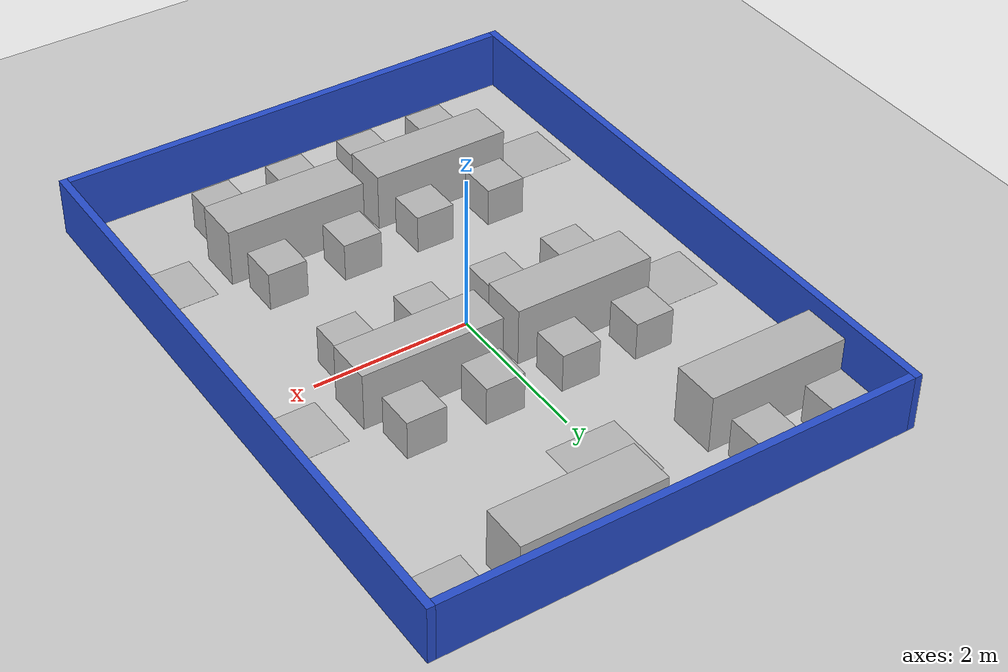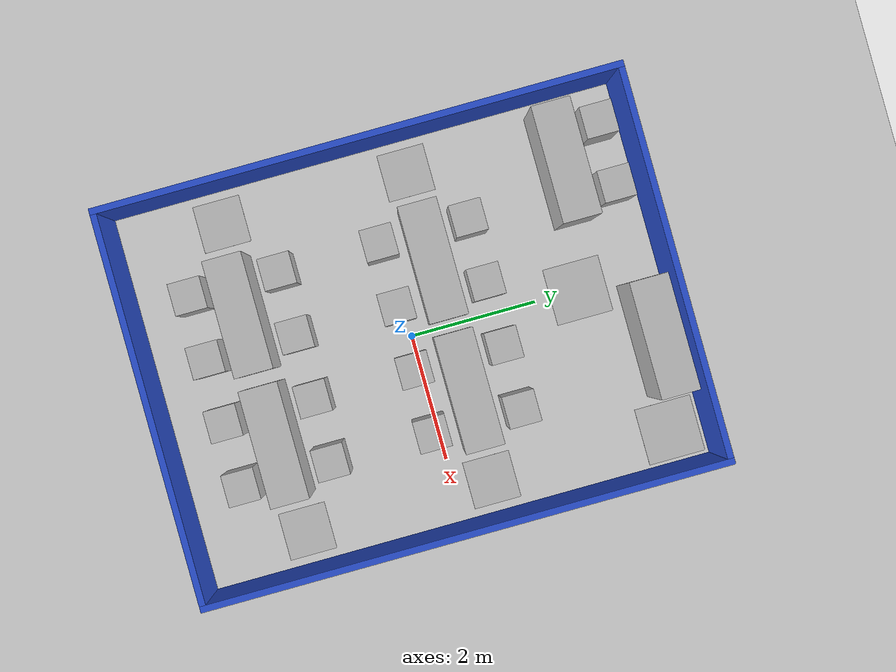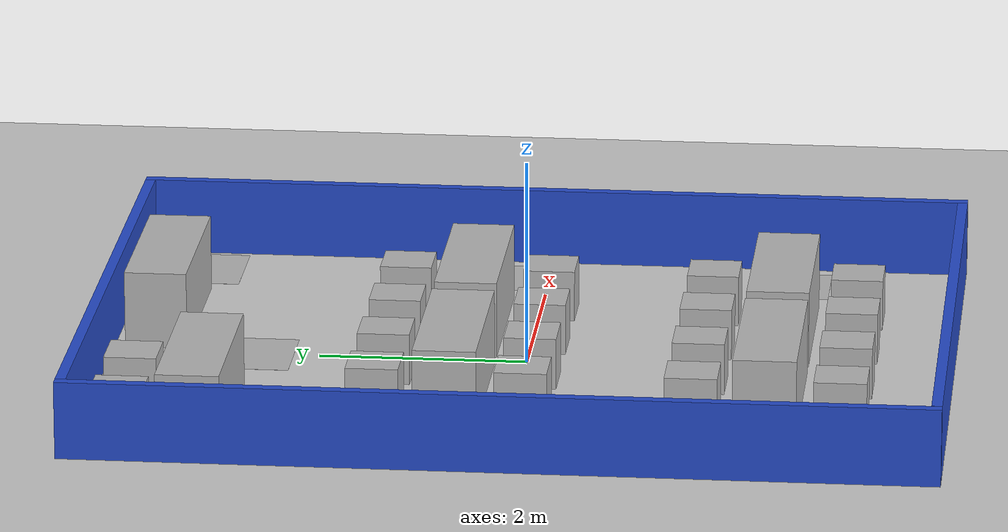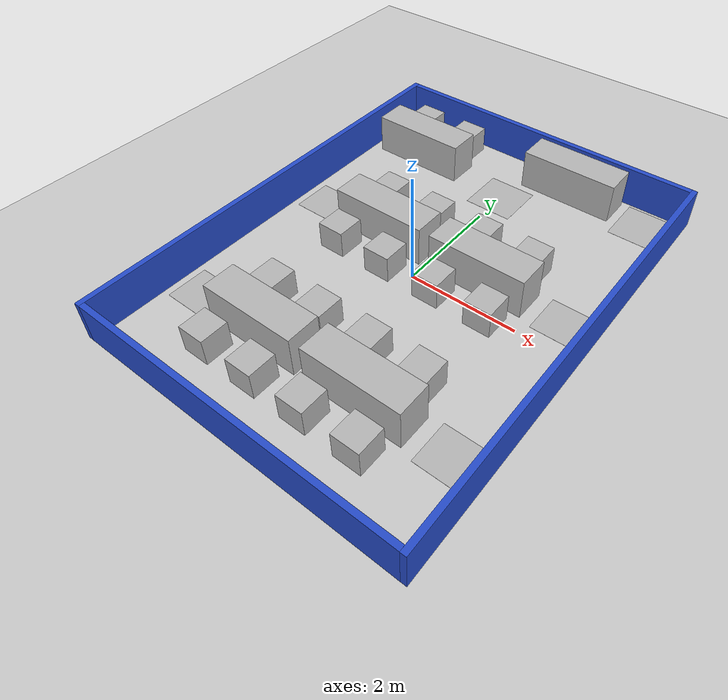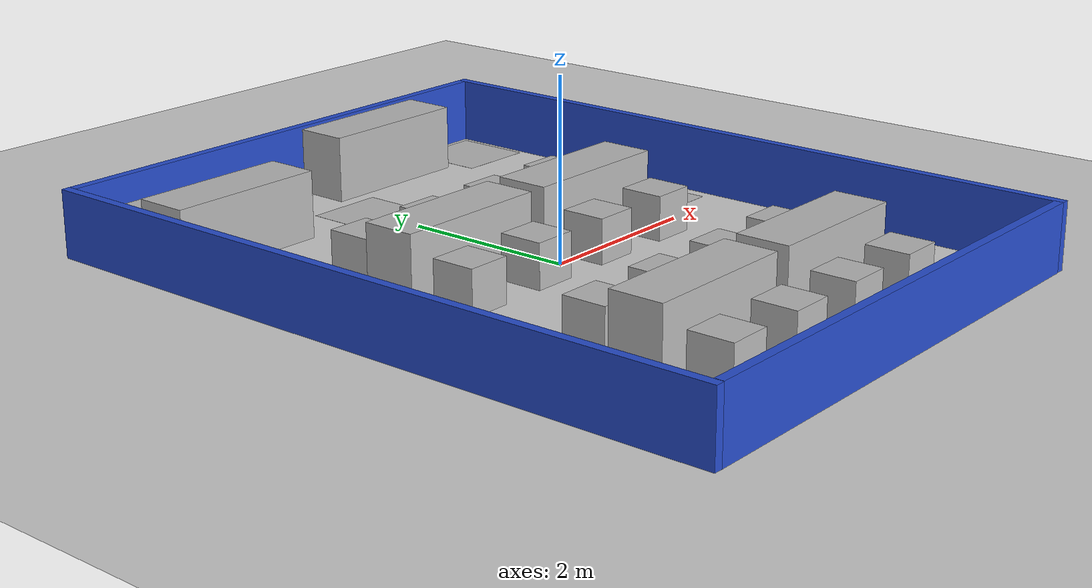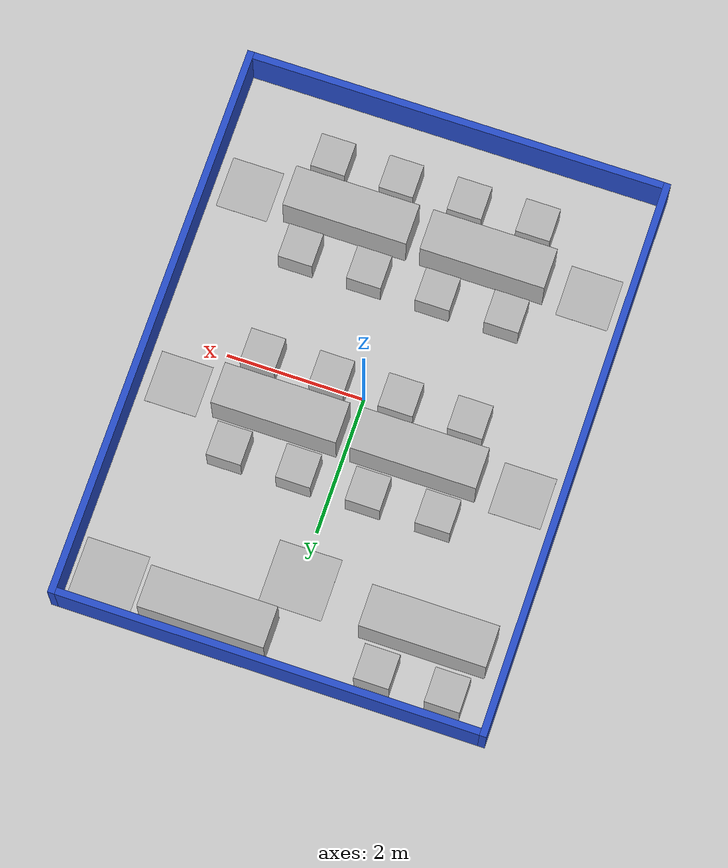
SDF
<sdf version="1.6">
 <world name="TIRT">
  <include><uri>model://sun</uri></include>
  <include><uri>model://ground_plane</uri></include>
  <physics type="ode">
   <real_time_update_rate>1000.0</real_time_update_rate>
   <max_step_size>0.001</max_step_size>
   <real_time_factor>1</real_time_factor>
   <ode>
    <solver>
     <type>quick</type>
     <iters>150</iters>
     <precon_iters>0</precon_iters>
     <sor>1.400000</sor>
     <use_dynamic_moi_rescaling>1</use_dynamic_moi_rescaling>
    </solver>
    <constraints>
     <cfm>0.00001</cfm>
     <erp>0.2</erp>
     <contact_max_correcting_vel>2000.000000</contact_max_correcting_vel>
     <contact_surface_layer>0.01000</contact_surface_layer>
    </constraints>
   </ode>
  </physics>
  <include><uri>model://Fence</uri></include>
  <include><uri>model://Dining_Table</uri><name>Dining_Table1</name><pose>1.0 -2.4 0 0 0 0</pose></include>
  <include><uri>model://Dining_Table</uri><name>Dining_Table2</name><pose>1.0 0.6 0 0 0 0</pose></include>
  <include><uri>model://Dining_Table</uri><name>Dining_Table3</name><pose>-1.0 -2.4 0 0 0 0</pose></include>
  <include><uri>model://Dining_Table</uri><name>Dining_Table4</name><pose>-1.0 0.6 0 0 0 0</pose></include>
  <include>
   <uri>model://Operational_Table</uri>
   <name>Operational_Table</name>
   <pose>-1.9 2.9 0 0 0 0</pose>
  </include>
  <include>
   <uri>model://Preparation_Table</uri>
   <name>Preparation_Table</name>
   <pose>1.0 3.6 0 0 0 0</pose>
  </include>
  <include><uri>model://Parking_Area1</uri><name>Parking_Area1</name><pose>2.5 -2.4 0 0 0 0</pose></include>
  <include><uri>model://Parking_Area2</uri><name>Parking_Area2</name><pose>2.5 0.6 0 0 0 0</pose></include>
  <include><uri>model://Parking_Area3</uri><name>Parking_Area3</name><pose>-2.5 -2.4 0 0 0 0</pose></include>
  <include><uri>model://Parking_Area4</uri><name>Parking_Area4</name><pose>-2.5 0.6 0 0 0 0</pose></include>
  <include><uri>model://Start_Area</uri><name>Start_Area</name><pose>0 2.7 0 0 0 0</pose></include>
  <include>
   <uri>model://Preparation_Area</uri>
   <name>Preparation_Area</name>
   <pose>2.5 3.5 0 0 0 0</pose>
  </include>
  <scene><ambient>0.4 0.4 0.4 1</ambient><background>0.7 0.7 0.7 1</background><shadows>true</shadows></scene>
 </world>
</sdf>

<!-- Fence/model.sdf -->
<sdf version='1.6'>
    <model name='Fence'>
        <static>true</static>
        <!-- Fence_Up -->
        <link name="fence_up">
            <pose>3.05 0 0.375 0 0 0</pose>
            <collision name="visual">
                <geometry>
                    <box>
                        <size>0.1 8.2 0.75</size>
                    </box>
                </geometry>
            </collision>
            <visual name="visual">
                <geometry>
                    <box>
                        <size>0.1 8.2 0.75</size>
                    </box>
                </geometry>
                <material>
                    <script>
                        <uri>file://media/materials/scripts/gazebo.material</uri>
                        <name>Gazebo/Blue</name>
                    </script>
                </material>
            </visual>
        </link>
        <!-- Fence_Down -->
        <link name="fence_down">
            <pose>-3.05 0 0.375 0 0 0</pose>
            <collision name="visual">
                <geometry>
                    <box>
                        <size>0.1 8.2 0.75</size>
                    </box>
                </geometry>
            </collision>
            <visual name="visual">
                <geometry>
                    <box>
                        <size>0.1 8.2 0.75</size>
                    </box>
                </geometry>
                <material>
                    <script>
                        <uri>file://media/materials/scripts/gazebo.material</uri>
                        <name>Gazebo/Blue</name>
                    </script>
                </material>
            </visual>
        </link>
        <!-- Fence_Left -->
        <link name="fence_left">
            <pose>0 4.05 0.375 0 0 0</pose>
            <collision name="visual">
                <geometry>
                    <box>
                        <size>6 0.1 0.75</size>
                    </box>
                </geometry>
            </collision>
            <visual name="visual">
                <geometry>
                    <box>
                        <size>6 0.1 0.75</size>
                    </box>
                </geometry>
                <material>
                    <script>
                        <uri>file://media/materials/scripts/gazebo.material</uri>
                        <name>Gazebo/Blue</name>
                    </script>
                </material>
            </visual>
        </link>
        <!-- Fence_Right -->
        <link name="fence_right">
            <pose>0 -4.05 0.375 0 0 0</pose>
            <collision name="visual">
                <geometry>
                    <box>
                        <size>6 0.1 0.75</size>
                    </box>
                </geometry>
            </collision>
            <visual name="visual">
                <geometry>
                    <box>
                        <size>6 0.1 0.755</size>
                    </box>
                </geometry>
                <material>
                    <script>
                        <uri>file://media/materials/scripts/gazebo.material</uri>
                        <name>Gazebo/Blue</name>
                    </script>
                </material>
            </visual>
        </link>
    </model>
</sdf>

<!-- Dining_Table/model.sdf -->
<sdf version='1.6'>
    <model name='Dining_Table'>
        <static>true</static>
        <!-- Table -->
        <link name="table">
            <pose>0 0 0.375 0 0 0</pose>
            <collision name="visual">
                <geometry>
                    <box>
                        <size>1.8 0.6 0.75</size>
                    </box>
                </geometry>
            </collision>
            <visual name="visual">
                <geometry>
                    <box>
                        <size>1.8 0.6 0.75</size>
                    </box>
                </geometry>
                <material>
                    <script>
                        <uri>model://Dining_Table/materials/scripts</uri>
                        <uri>model://Dining_Table/materials/textures</uri>
                        <name>Table/Dining_Table</name>
                    </script>
                </material>
            </visual>
        </link>
        <!-- Chair_Upper_Left -->
        <link name="chair_upper_left">
            <pose>0.5 0.7 0.25 0 0 0</pose>
            <collision name="visual">
                <geometry>
                    <box>
                        <size>0.5 0.5 0.5</size>
                    </box>
                </geometry>
            </collision>
            <visual name="visual">
                <geometry>
                    <box>
                        <size>0.5 0.5 0.5</size>
                    </box>
                </geometry>
                <material>
                    <script>
                        <uri>model://Dining_Table/materials/scripts</uri>
                        <uri>model://Dining_Table/materials/textures</uri>
                        <name>Table/Dining_Table</name>
                    </script>
                </material>
            </visual>
        </link>
        <!-- Chair_Lower_Left -->
        <link name="chair_lower_left">
            <pose>-0.5 0.7 0.25 0 0 0</pose>
            <collision name="visual">
                <geometry>
                    <box>
                        <size>0.5 0.5 0.5</size>
                    </box>
                </geometry>
            </collision>
            <visual name="visual">
                <geometry>
                    <box>
                        <size>0.5 0.5 0.5</size>
                    </box>
                </geometry>
                <material>
                    <script>
                        <uri>model://Dining_Table/materials/scripts</uri>
                        <uri>model://Dining_Table/materials/textures</uri>
                        <name>Table/Dining_Table</name>
                    </script>
                </material>
            </visual>
        </link>
        <!-- Chair_Upper_Right -->
        <link name="chair_upper_right">
            <pose>0.5 -0.7 0.25 0 0 0</pose>
            <collision name="visual">
                <geometry>
                    <box>
                        <size>0.5 0.5 0.5</size>
                    </box>
                </geometry>
            </collision>
            <visual name="visual">
                <geometry>
                    <box>
                        <size>0.5 0.5 0.5</size>
                    </box>
                </geometry>
                <material>
                    <script>
                        <uri>model://Dining_Table/materials/scripts</uri>
                        <uri>model://Dining_Table/materials/textures</uri>
                        <name>Table/Dining_Table</name>
                    </script>
                </material>
            </visual>
        </link>
        <!-- Chair_Lower_Right -->
        <link name="chair_lower_right">
            <pose>-0.5 -0.7 0.25 0 0 0</pose>
            <collision name="visual">
                <geometry>
                    <box>
                        <size>0.5 0.5 0.5</size>
                    </box>
                </geometry>
            </collision>
            <visual name="visual">
                <geometry>
                    <box>
                        <size>0.5 0.5 0.5</size>
                    </box>
                </geometry>
                <material>
                    <script>
                        <uri>model://Dining_Table/materials/scripts</uri>
                        <uri>model://Dining_Table/materials/textures</uri>
                        <name>Table/Dining_Table</name>
                    </script>
                </material>
            </visual>
        </link>
    </model>
</sdf>

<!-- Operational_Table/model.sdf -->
<sdf version='1.6'>
    <model name='Operational_Table'>
        <static>true</static>
        <!-- Table -->
        <link name="table">
            <pose>0 0 0.375 0 0 0</pose>
            <collision name="visual">
                <geometry>
                    <box>
                        <size>1.8 0.6 0.75</size>
                    </box>
                </geometry>
            </collision>
            <visual name="visual">
                <geometry>
                    <box>
                        <size>1.8 0.6 0.75</size>
                    </box>
                </geometry>
                <material>
                    <script>
                        <uri>model://Operational_Table/materials/scripts</uri>
                        <uri>model://Operational_Table/materials/textures</uri>
                        <name>Table/Operational_Table</name>
                    </script>
                </material>
            </visual>
        </link>
        <!-- Chair_Upper_Left -->
        <link name="chair_upper_left">
            <pose>0.5 0.7 0.25 0 0 0</pose>
            <collision name="visual">
                <geometry>
                    <box>
                        <size>0.5 0.5 0.5</size>
                    </box>
                </geometry>
            </collision>
            <visual name="visual">
                <geometry>
                    <box>
                        <size>0.5 0.5 0.5</size>
                    </box>
                </geometry>
                <material>
                    <script>
                        <uri>model://Operational_Table/materials/scripts</uri>
                        <uri>model://Operational_Table/materials/textures</uri>
                        <name>Table/Operational_Table</name>
                    </script>
                </material>
            </visual>
        </link>
        <!-- Chair_Lower_Left -->
        <link name="chair_lower_left">
            <pose>-0.5 0.7 0.25 0 0 0</pose>
            <collision name="visual">
                <geometry>
                    <box>
                        <size>0.5 0.5 0.5</size>
                    </box>
                </geometry>
            </collision>
            <visual name="visual">
                <geometry>
                    <box>
                        <size>0.5 0.5 0.5</size>
                    </box>
                </geometry>
                <material>
                    <script>
                        <uri>model://Operational_Table/materials/scripts</uri>
                        <uri>model://Operational_Table/materials/textures</uri>
                        <name>Table/Operational_Table</name>
                    </script>
                </material>
            </visual>
        </link>
    </model>
</sdf>

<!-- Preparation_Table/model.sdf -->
<sdf version='1.6'>
    <model name='Preparation_Table'>
        <static>true</static>
        <!-- Table -->
        <link name="table">
            <pose>0 0 0.375 0 0 0</pose>
            <collision name="visual">
                <geometry>
                    <box>
                        <size>1.8 0.6 0.75</size>
                    </box>
                </geometry>
            </collision>
            <visual name="visual">
                <geometry>
                    <box>
                        <size>1.8 0.6 0.75</size>
                    </box>
                </geometry>
                <material>
                    <script>
                        <uri>model://Preparation_Table/materials/scripts</uri>
                        <uri>model://Preparation_Table/materials/textures</uri>
                        <name>Table/Preparation_Table</name>
                    </script>
                </material>
            </visual>
        </link>
    </model>
</sdf>

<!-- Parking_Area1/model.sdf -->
<sdf version='1.6'>
    <model name='Parking_Area1'>
        <static>true</static>
        <!-- Area -->
        <link name="area">
            <pose>0 0 0 0 0 0</pose>
            <visual name="visual">
                <geometry>
                    <box>
                        <size>0.75 0.75 0.001</size>
                    </box>
                </geometry>
                <material>
                    <script>
                        <uri>model://Parking_Area1/materials/scripts</uri>
                        <uri>model://Parking_Area1/materials/textures</uri>
                        <name>Area/Parking_Area1</name>
                    </script>
                </material>
            </visual>
        </link>
    </model>
</sdf>

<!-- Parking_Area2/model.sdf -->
<sdf version='1.6'>
    <model name='Parking_Area2'>
        <static>true</static>
        <!-- Area -->
        <link name="area">
            <pose>0 0 0 0 0 0</pose>
            <visual name="visual">
                <geometry>
                    <box>
                        <size>0.75 0.75 0.001</size>
                    </box>
                </geometry>
                <material>
                    <script>
                        <uri>model://Parking_Area2/materials/scripts</uri>
                        <uri>model://Parking_Area2/materials/textures</uri>
                        <name>Area/Parking_Area2</name>
                    </script>
                </material>
            </visual>
        </link>
    </model>
</sdf>

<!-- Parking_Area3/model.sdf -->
<sdf version='1.6'>
    <model name='Parking_Area3'>
        <static>true</static>
        <!-- Area -->
        <link name="area">
            <pose>0 0 0 0 0 0</pose>
            <visual name="visual">
                <geometry>
                    <box>
                        <size>0.75 0.75 0.001</size>
                    </box>
                </geometry>
                <material>
                    <script>
                        <uri>model://Parking_Area3/materials/scripts</uri>
                        <uri>model://Parking_Area3/materials/textures</uri>
                        <name>Area/Parking_Area3</name>
                    </script>
                </material>
            </visual>
        </link>
    </model>
</sdf>

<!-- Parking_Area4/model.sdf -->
<sdf version='1.6'>
    <model name='Parking_Area4'>
        <static>true</static>
        <!-- Area -->
        <link name="area">
            <pose>0 0 0 0 0 0</pose>
            <visual name="visual">
                <geometry>
                    <box>
                        <size>0.75 0.75 0.001</size>
                    </box>
                </geometry>
                <material>
                    <script>
                        <uri>model://Parking_Area4/materials/scripts</uri>
                        <uri>model://Parking_Area4/materials/textures</uri>
                        <name>Area/Parking_Area4</name>
                    </script>
                </material>
            </visual>
        </link>
    </model>
</sdf>

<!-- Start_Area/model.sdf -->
<sdf version='1.6'>
    <model name='Start_Area'>
        <static>true</static>
        <!-- Area -->
        <link name="area">
            <pose>0 0 0 0 0 0</pose>
            <visual name="visual">
                <geometry>
                    <box>
                        <size>0.9 0.9 0.001</size>
                    </box>
                </geometry>
                <material>
                    <script>
                        <uri>model://Start_Area/materials/scripts</uri>
                        <uri>model://Start_Area/materials/textures</uri>
                        <name>Area/Start_Area</name>
                    </script>
                </material>
            </visual>
        </link>
    </model>
</sdf>

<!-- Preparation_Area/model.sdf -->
<sdf version='1.6'>
    <model name='Preparation_Area'>
        <static>true</static>
        <!-- Area -->
        <link name="area">
            <pose>0 0 0 0 0 0</pose>
            <visual name="visual">
                <geometry>
                    <box>
                        <size>0.9 0.9 0.001</size>
                    </box>
                </geometry>
                <material>
                    <script>
                        <uri>model://Preparation_Area/materials/scripts</uri>
                        <uri>model://Preparation_Area/materials/textures</uri>
                        <name>Area/Preparation_Area</name>
                    </script>
                </material>
            </visual>
        </link>
    </model>
</sdf>
